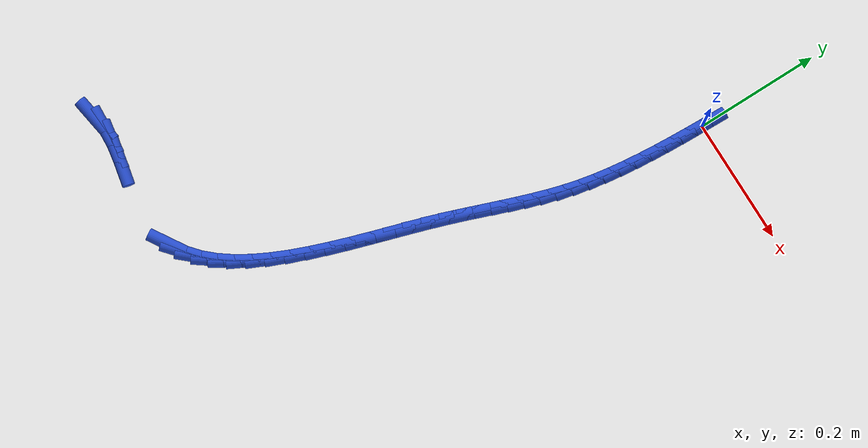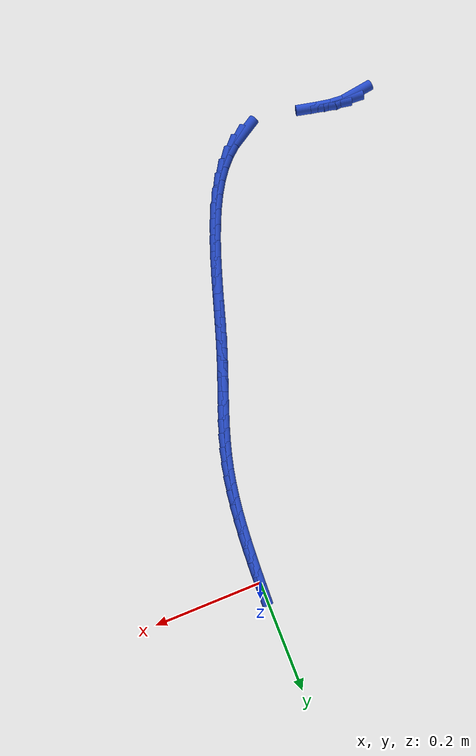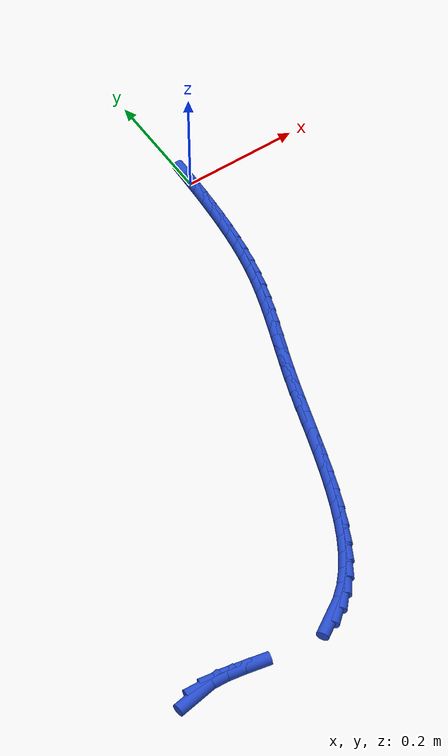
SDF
<sdf version="1.6">
 <world name="default">
  <model name="ground_plane">
   <static>1</static>
   <link name="link">
    <collision name="collision">
     <geometry><plane><normal>0 0 1</normal><size>100 100</size></plane></geometry>
     <surface><friction><ode><mu>100</mu><mu2>50</mu2></ode></friction></surface>
    </collision>
    <visual name="visual">
     <cast_shadows>0</cast_shadows>
     <geometry><plane><normal>0 0 1</normal><size>100 100</size></plane></geometry>
     <material>
      <script><uri>file://media/materials/scripts/gazebo.material</uri><name>Gazebo/WhiteGlow</name></script>
     </material>
    </visual>
   </link>
  </model>
  <model name="line">
   <link name="link_0">
    <pose>5.095750210681871e-18 6.938893903907228e-18 0.01 0 1.57 1.5388056076231569</pose>
    <collision name="collision">
     <geometry><cylinder><radius>0.01</radius><length>0.08</length></cylinder></geometry>
    </collision>
    <visual name="visual">
     <material>
      <script><name>Gazebo/Blue</name><uri>file://media/materials/scripts/gazebo.material</uri></script>
     </material>
     <geometry><cylinder><radius>0.01</radius><length>0.08</length></cylinder></geometry>
    </visual>
   </link>
   <link name="link_250">
    <pose>-0.5014952778312552 -0.7789438348294744 0.01 0 1.57 0.1545673147866425</pose>
    <collision name="collision">
     <geometry><cylinder><radius>0.01</radius><length>0.08</length></cylinder></geometry>
    </collision>
    <visual name="visual">
     <material>
      <script><name>Gazebo/Blue</name><uri>file://media/materials/scripts/gazebo.material</uri></script>
     </material>
     <geometry><cylinder><radius>0.01</radius><length>0.08</length></cylinder></geometry>
    </visual>
   </link>
   <link name="link_251">
    <pose>-0.48012096238269963 -0.7756135002110699 0.01 0 1.57 -0.06137879865347462</pose>
    <collision name="collision">
     <geometry><cylinder><radius>0.01</radius><length>0.08</length></cylinder></geometry>
    </collision>
    <visual name="visual">
     <material>
      <script><name>Gazebo/Blue</name><uri>file://media/materials/scripts/gazebo.material</uri></script>
     </material>
     <geometry><cylinder><radius>0.01</radius><length>0.08</length></cylinder></geometry>
    </visual>
   </link>
   <link name="link_252">
    <pose>-0.4556935771865658 -0.7771147094392984 0.01 0 1.57 -0.17135448006173515</pose>
    <collision name="collision">
     <geometry><cylinder><radius>0.01</radius><length>0.08</length></cylinder></geometry>
    </collision>
    <visual name="visual">
     <material>
      <script><name>Gazebo/Blue</name><uri>file://media/materials/scripts/gazebo.material</uri></script>
     </material>
     <geometry><cylinder><radius>0.01</radius><length>0.08</length></cylinder></geometry>
    </visual>
   </link>
   <link name="link_253">
    <pose>-0.42916887362714934 -0.7817048502001396 0.01 0 1.57 -0.21124947493965626</pose>
    <collision name="collision">
     <geometry><cylinder><radius>0.01</radius><length>0.08</length></cylinder></geometry>
    </collision>
    <visual name="visual">
     <material>
      <script><name>Gazebo/Blue</name><uri>file://media/materials/scripts/gazebo.material</uri></script>
     </material>
     <geometry><cylinder><radius>0.01</radius><length>0.08</length></cylinder></geometry>
    </visual>
   </link>
   <link name="link_259">
    <pose>-0.27628096059525087 -0.7827148774900266 0.01 0 1.57 0.5562939252033929</pose>
    <collision name="collision">
     <geometry><cylinder><radius>0.01</radius><length>0.08</length></cylinder></geometry>
    </collision>
    <visual name="visual">
     <material>
      <script><name>Gazebo/Blue</name><uri>file://media/materials/scripts/gazebo.material</uri></script>
     </material>
     <geometry><cylinder><radius>0.01</radius><length>0.08</length></cylinder></geometry>
    </visual>
   </link>
   <link name="link_260">
    <pose>-0.25647954044249016 -0.7704023806985763 0.01 0 1.57 0.708711674408579</pose>
    <collision name="collision">
     <geometry><cylinder><radius>0.01</radius><length>0.08</length></cylinder></geometry>
    </collision>
    <visual name="visual">
     <material>
      <script><name>Gazebo/Blue</name><uri>file://media/materials/scripts/gazebo.material</uri></script>
     </material>
     <geometry><cylinder><radius>0.01</radius><length>0.08</length></cylinder></geometry>
    </visual>
   </link>
   <link name="link_261">
    <pose>-0.23827904808212777 -0.7547992621330566 0.01 0 1.57 0.8370760091720744</pose>
    <collision name="collision">
     <geometry><cylinder><radius>0.01</radius><length>0.08</length></cylinder></geometry>
    </collision>
    <visual name="visual">
     <material>
      <script><name>Gazebo/Blue</name><uri>file://media/materials/scripts/gazebo.material</uri></script>
     </material>
     <geometry><cylinder><radius>0.01</radius><length>0.08</length></cylinder></geometry>
    </visual>
   </link>
   <link name="link_262">
    <pose>-0.2215485748005141 -0.736243655217897 0.01 0 1.57 0.9421536992742708</pose>
    <collision name="collision">
     <geometry><cylinder><radius>0.01</radius><length>0.08</length></cylinder></geometry>
    </collision>
    <visual name="visual">
     <material>
      <script><name>Gazebo/Blue</name><uri>file://media/materials/scripts/gazebo.material</uri></script>
     </material>
     <geometry><cylinder><radius>0.01</radius><length>0.08</length></cylinder></geometry>
    </visual>
   </link>
   <link name="link_263">
    <pose>-0.2061572118839998 -0.7150736933775289 0.01 0 1.57 1.026764031784995</pose>
    <collision name="collision">
     <geometry><cylinder><radius>0.01</radius><length>0.08</length></cylinder></geometry>
    </collision>
    <visual name="visual">
     <material>
      <script><name>Gazebo/Blue</name><uri>file://media/materials/scripts/gazebo.material</uri></script>
     </material>
     <geometry><cylinder><radius>0.01</radius><length>0.08</length></cylinder></geometry>
    </visual>
   </link>
   <link name="link_264">
    <pose>-0.19197405061893538 -0.6916275100363825 0.01 0 1.57 1.0941948769989815</pose>
    <collision name="collision">
     <geometry><cylinder><radius>0.01</radius><length>0.08</length></cylinder></geometry>
    </collision>
    <visual name="visual">
     <material>
      <script><name>Gazebo/Blue</name><uri>file://media/materials/scripts/gazebo.material</uri></script>
     </material>
     <geometry><cylinder><radius>0.01</radius><length>0.08</length></cylinder></geometry>
    </visual>
   </link>
   <link name="link_265">
    <pose>-0.1788681822916719 -0.6662432386188886 0.01 0 1.57 1.147431482078545</pose>
    <collision name="collision">
     <geometry><cylinder><radius>0.01</radius><length>0.08</length></cylinder></geometry>
    </collision>
    <visual name="visual">
     <material>
      <script><name>Gazebo/Blue</name><uri>file://media/materials/scripts/gazebo.material</uri></script>
     </material>
     <geometry><cylinder><radius>0.01</radius><length>0.08</length></cylinder></geometry>
    </visual>
   </link>
   <link name="link_266">
    <pose>-0.16670869818855902 -0.6392590125494767 0.01 0 1.57 1.1888993283379439</pose>
    <collision name="collision">
     <geometry><cylinder><radius>0.01</radius><length>0.08</length></cylinder></geometry>
    </collision>
    <visual name="visual">
     <material>
      <script><name>Gazebo/Blue</name><uri>file://media/materials/scripts/gazebo.material</uri></script>
     </material>
     <geometry><cylinder><radius>0.01</radius><length>0.08</length></cylinder></geometry>
    </visual>
   </link>
   <link name="link_267">
    <pose>-0.15536468959594782 -0.6110129652525779 0.01 0 1.57 1.220443724316351</pose>
    <collision name="collision">
     <geometry><cylinder><radius>0.01</radius><length>0.08</length></cylinder></geometry>
    </collision>
    <visual name="visual">
     <material>
      <script><name>Gazebo/Blue</name><uri>file://media/materials/scripts/gazebo.material</uri></script>
     </material>
     <geometry><cylinder><radius>0.01</radius><length>0.08</length></cylinder></geometry>
    </visual>
   </link>
   <link name="link_268">
    <pose>-0.1447052478001889 -0.5818432301526223 0.01 0 1.57 1.2433896757831246</pose>
    <collision name="collision">
     <geometry><cylinder><radius>0.01</radius><length>0.08</length></cylinder></geometry>
    </collision>
    <visual name="visual">
     <material>
      <script><name>Gazebo/Blue</name><uri>file://media/materials/scripts/gazebo.material</uri></script>
     </material>
     <geometry><cylinder><radius>0.01</radius><length>0.08</length></cylinder></geometry>
    </visual>
   </link>
   <link name="link_269">
    <pose>-0.13459946408763274 -0.552087940674041 0.01 0 1.57 1.2586110966061161</pose>
    <collision name="collision">
     <geometry><cylinder><radius>0.01</radius><length>0.08</length></cylinder></geometry>
    </collision>
    <visual name="visual">
     <material>
      <script><name>Gazebo/Blue</name><uri>file://media/materials/scripts/gazebo.material</uri></script>
     </material>
     <geometry><cylinder><radius>0.01</radius><length>0.08</length></cylinder></geometry>
    </visual>
   </link>
   <link name="link_270">
    <pose>-0.12491642974463002 -0.5220852302412642 0.01 0 1.57 1.2665812110327157</pose>
    <collision name="collision">
     <geometry><cylinder><radius>0.01</radius><length>0.08</length></cylinder></geometry>
    </collision>
    <visual name="visual">
     <material>
      <script><name>Gazebo/Blue</name><uri>file://media/materials/scripts/gazebo.material</uri></script>
     </material>
     <geometry><cylinder><radius>0.01</radius><length>0.08</length></cylinder></geometry>
    </visual>
   </link>
   <link name="link_271">
    <pose>-0.11552523605753125 -0.4921732322787223 0.01 0 1.57 1.2673931401777163</pose>
    <collision name="collision">
     <geometry><cylinder><radius>0.01</radius><length>0.08</length></cylinder></geometry>
    </collision>
    <visual name="visual">
     <material>
      <script><name>Gazebo/Blue</name><uri>file://media/materials/scripts/gazebo.material</uri></script>
     </material>
     <geometry><cylinder><radius>0.01</radius><length>0.08</length></cylinder></geometry>
    </visual>
   </link>
   <link name="link_272">
    <pose>-0.10629497431268702 -0.4626900802108458 0.01 0 1.57 1.260743946082397</pose>
    <collision name="collision">
     <geometry><cylinder><radius>0.01</radius><length>0.08</length></cylinder></geometry>
    </collision>
    <visual name="visual">
     <material>
      <script><name>Gazebo/Blue</name><uri>file://media/materials/scripts/gazebo.material</uri></script>
     </material>
     <geometry><cylinder><radius>0.01</radius><length>0.08</length></cylinder></geometry>
    </visual>
   </link>
   <link name="link_273">
    <pose>-0.09709473579644799 -0.4339739074620655 0.01 0 1.57 1.2461773237092202</pose>
    <collision name="collision">
     <geometry><cylinder><radius>0.01</radius><length>0.08</length></cylinder></geometry>
    </collision>
    <visual name="visual">
     <material>
      <script><name>Gazebo/Blue</name><uri>file://media/materials/scripts/gazebo.material</uri></script>
     </material>
     <geometry><cylinder><radius>0.01</radius><length>0.08</length></cylinder></geometry>
    </visual>
   </link>
   <link name="link_274">
    <pose>-0.08779915662025578 -0.4063515346278877 0.01 0 1.57 1.2300026687380656</pose>
    <collision name="collision">
     <geometry><cylinder><radius>0.01</radius><length>0.08</length></cylinder></geometry>
    </collision>
    <visual name="visual">
     <material>
      <script><name>Gazebo/Blue</name><uri>file://media/materials/scripts/gazebo.material</uri></script>
     </material>
     <geometry><cylinder><radius>0.01</radius><length>0.08</length></cylinder></geometry>
    </visual>
   </link>
   <link name="link_275">
    <pose>-0.07841304366385281 -0.37988420140479234 0.01 0 1.57 1.2199396922445942</pose>
    <collision name="collision">
     <geometry><cylinder><radius>0.01</radius><length>0.08</length></cylinder></geometry>
    </collision>
    <visual name="visual">
     <material>
      <script><name>Gazebo/Blue</name><uri>file://media/materials/scripts/gazebo.material</uri></script>
     </material>
     <geometry><cylinder><radius>0.01</radius><length>0.08</length></cylinder></geometry>
    </visual>
   </link>
   <link name="link_276">
    <pose>-0.0690728582383257 -0.35436453954683295 0.01 0 1.57 1.2171552053756731</pose>
    <collision name="collision">
     <geometry><cylinder><radius>0.01</radius><length>0.08</length></cylinder></geometry>
    </collision>
    <visual name="visual">
     <material>
      <script><name>Gazebo/Blue</name><uri>file://media/materials/scripts/gazebo.material</uri></script>
     </material>
     <geometry><cylinder><radius>0.01</radius><length>0.08</length></cylinder></geometry>
    </visual>
   </link>
   <link name="link_277">
    <pose>-0.059920903224408906 -0.3295732625460822 0.01 0 1.57 1.222333123643362</pose>
    <collision name="collision">
     <geometry><cylinder><radius>0.01</radius><length>0.08</length></cylinder></geometry>
    </collision>
    <visual name="visual">
     <material>
      <script><name>Gazebo/Blue</name><uri>file://media/materials/scripts/gazebo.material</uri></script>
     </material>
     <geometry><cylinder><radius>0.01</radius><length>0.08</length></cylinder></geometry>
    </visual>
   </link>
   <link name="link_278">
    <pose>-0.05109948150283694 -0.3052910838946128 0.01 0 1.57 1.2359325391575695</pose>
    <collision name="collision">
     <geometry><cylinder><radius>0.01</radius><length>0.08</length></cylinder></geometry>
    </collision>
    <visual name="visual">
     <material>
      <script><name>Gazebo/Blue</name><uri>file://media/materials/scripts/gazebo.material</uri></script>
     </material>
     <geometry><cylinder><radius>0.01</radius><length>0.08</length></cylinder></geometry>
    </visual>
   </link>
   <link name="link_279">
    <pose>-0.04275089595434431 -0.28129871708449755 0.01 0 1.57 1.2581211374749905</pose>
    <collision name="collision">
     <geometry><cylinder><radius>0.01</radius><length>0.08</length></cylinder></geometry>
    </collision>
    <visual name="visual">
     <material>
      <script><name>Gazebo/Blue</name><uri>file://media/materials/scripts/gazebo.material</uri></script>
     </material>
     <geometry><cylinder><radius>0.01</radius><length>0.08</length></cylinder></geometry>
    </visual>
   </link>
   <link name="link_280">
    <pose>-0.03501744945966578 -0.2573768756078102 0.01 0 1.57 1.2887102188956763</pose>
    <collision name="collision">
     <geometry><cylinder><radius>0.01</radius><length>0.08</length></cylinder></geometry>
    </collision>
    <visual name="visual">
     <material>
      <script><name>Gazebo/Blue</name><uri>file://media/materials/scripts/gazebo.material</uri></script>
     </material>
     <geometry><cylinder><radius>0.01</radius><length>0.08</length></cylinder></geometry>
    </visual>
   </link>
   <link name="link_281">
    <pose>-0.02804144489953532 -0.23330627295662182 0.01 0 1.57 1.3270738083489684</pose>
    <collision name="collision">
     <geometry><cylinder><radius>0.01</radius><length>0.08</length></cylinder></geometry>
    </collision>
    <visual name="visual">
     <material>
      <script><name>Gazebo/Blue</name><uri>file://media/materials/scripts/gazebo.material</uri></script>
     </material>
     <geometry><cylinder><radius>0.01</radius><length>0.08</length></cylinder></geometry>
    </visual>
   </link>
   <link name="link_282">
    <pose>-0.021964566013062008 -0.20886833355265877 0.01 0 1.57 1.3685686346568584</pose>
    <collision name="collision">
     <geometry><cylinder><radius>0.01</radius><length>0.08</length></cylinder></geometry>
    </collision>
    <visual name="visual">
     <material>
      <script><name>Gazebo/Blue</name><uri>file://media/materials/scripts/gazebo.material</uri></script>
     </material>
     <geometry><cylinder><radius>0.01</radius><length>0.08</length></cylinder></geometry>
    </visual>
   </link>
   <link name="link_283">
    <pose>-0.016851940924305468 -0.18393238683738267 0.01 0 1.57 1.4056220044744503</pose>
    <collision name="collision">
     <geometry><cylinder><radius>0.01</radius><length>0.08</length></cylinder></geometry>
    </collision>
    <visual name="visual">
     <material>
      <script><name>Gazebo/Blue</name><uri>file://media/materials/scripts/gazebo.material</uri></script>
     </material>
     <geometry><cylinder><radius>0.01</radius><length>0.08</length></cylinder></geometry>
    </visual>
   </link>
   <link name="link_284">
    <pose>-0.01261912530906416 -0.15853950888387514 0.01 0 1.57 1.4376258883705135</pose>
    <collision name="collision">
     <geometry><cylinder><radius>0.01</radius><length>0.08</length></cylinder></geometry>
    </collision>
    <visual name="visual">
     <material>
      <script><name>Gazebo/Blue</name><uri>file://media/materials/scripts/gazebo.material</uri></script>
     </material>
     <geometry><cylinder><radius>0.01</radius><length>0.08</length></cylinder></geometry>
    </visual>
   </link>
   <link name="link_285">
    <pose>-0.009164365050169595 -0.13275065174285117 0.01 0 1.57 1.4648376167729407</pose>
    <collision name="collision">
     <geometry><cylinder><radius>0.01</radius><length>0.08</length></cylinder></geometry>
    </collision>
    <visual name="visual">
     <material>
      <script><name>Gazebo/Blue</name><uri>file://media/materials/scripts/gazebo.material</uri></script>
     </material>
     <geometry><cylinder><radius>0.01</radius><length>0.08</length></cylinder></geometry>
    </visual>
   </link>
   <link name="link_286">
    <pose>-0.006385906030453252 -0.1066267674650254 0.01 0 1.57 1.4875015319978302</pose>
    <collision name="collision">
     <geometry><cylinder><radius>0.01</radius><length>0.08</length></cylinder></geometry>
    </collision>
    <visual name="visual">
     <material>
      <script><name>Gazebo/Blue</name><uri>file://media/materials/scripts/gazebo.material</uri></script>
     </material>
     <geometry><cylinder><radius>0.01</radius><length>0.08</length></cylinder></geometry>
    </visual>
   </link>
   <link name="link_287">
    <pose>-0.004181994132746634 -0.08022880810111269 0.01 0 1.57 1.5058353037091703</pose>
    <collision name="collision">
     <geometry><cylinder><radius>0.01</radius><length>0.08</length></cylinder></geometry>
    </collision>
    <visual name="visual">
     <material>
      <script><name>Gazebo/Blue</name><uri>file://media/materials/scripts/gazebo.material</uri></script>
     </material>
     <geometry><cylinder><radius>0.01</radius><length>0.08</length></cylinder></geometry>
    </visual>
   </link>
   <link name="link_288">
    <pose>-0.0024508752398812203 -0.05361772570182767 0.01 0 1.57 1.5200210729284802</pose>
    <collision name="collision">
     <geometry><cylinder><radius>0.01</radius><length>0.08</length></cylinder></geometry>
    </collision>
    <visual name="visual">
     <material>
      <script><name>Gazebo/Blue</name><uri>file://media/materials/scripts/gazebo.material</uri></script>
     </material>
     <geometry><cylinder><radius>0.01</radius><length>0.08</length></cylinder></geometry>
    </visual>
   </link>
   <link name="link_289">
    <pose>-0.0010907952346885103 -0.026854472317885184 0.01 0 1.57 1.5301998883319288</pose>
    <collision name="collision">
     <geometry><cylinder><radius>0.01</radius><length>0.08</length></cylinder></geometry>
    </collision>
    <visual name="visual">
     <material>
      <script><name>Gazebo/Blue</name><uri>file://media/materials/scripts/gazebo.material</uri></script>
     </material>
     <geometry><cylinder><radius>0.01</radius><length>0.08</length></cylinder></geometry>
    </visual>
   </link>
  </model>
 </world>
</sdf>
